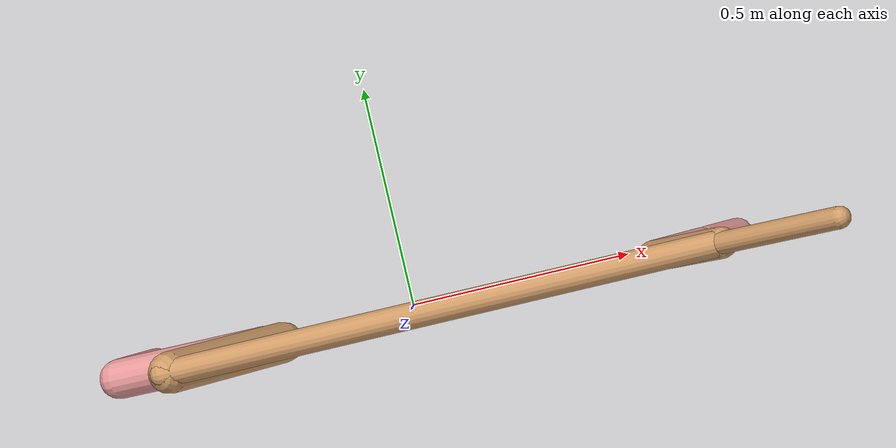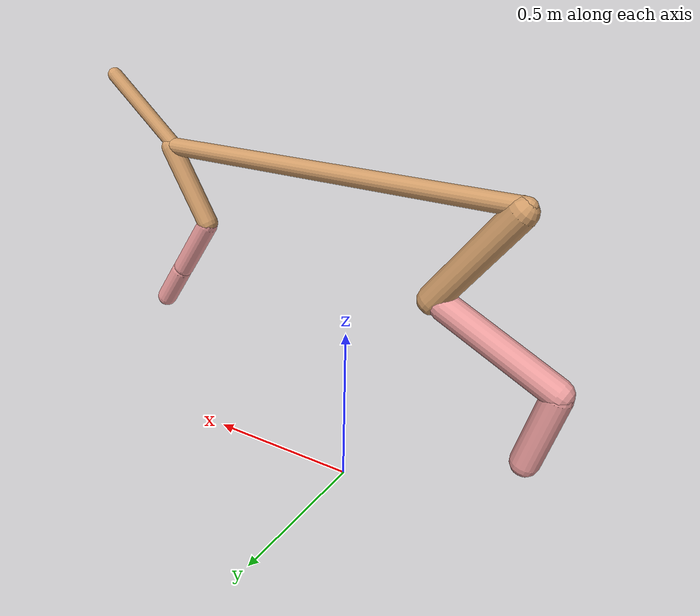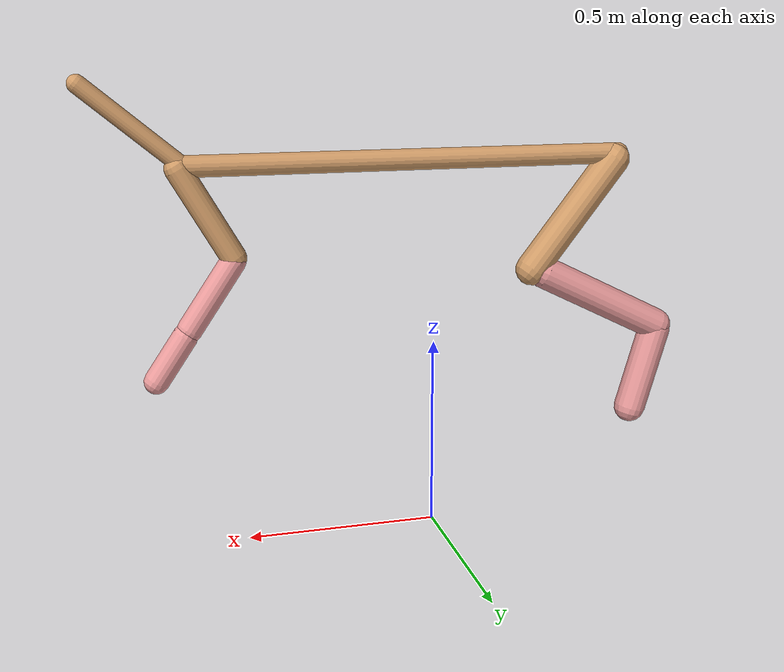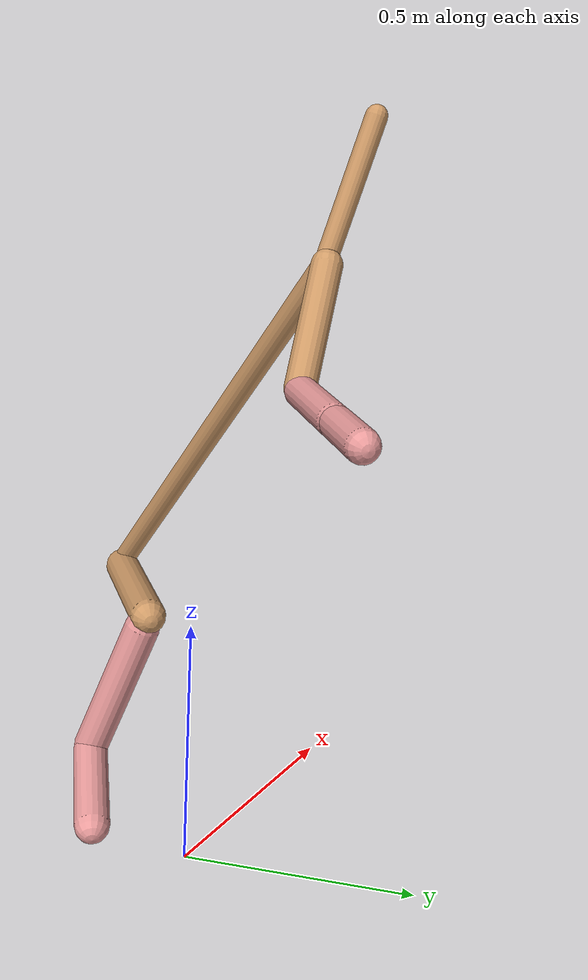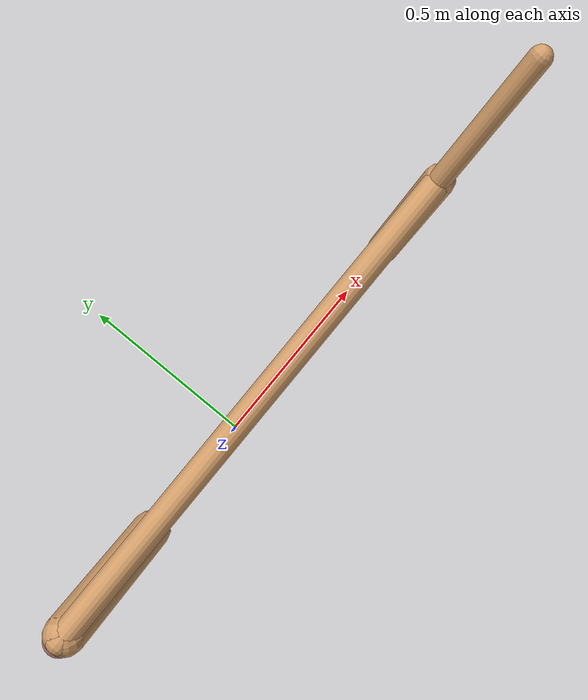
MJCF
<mujoco model="cheetah">
  <compiler angle="radian" coordinate="local" inertiafromgeom="true" settotalmass="14" />
  <default>
    <joint armature=".1" damping=".01" limited="true" solimplimit="0 .8 .03" solreflimit=".02 1" stiffness="8" />
    <geom conaffinity="0" condim="3" contype="1" friction="0.8 .1 .1" rgba="0.8 0.6 .4 1" solimp="0.0 0.8 0.01" solref="0.02 1" />
    <motor ctrllimited="true" ctrlrange="-1 1" />
  </default>
  <size nstack="300000" nuser_geom="1" />
  <option gravity="0 0 -9.81" timestep="0.01" />
  <worldbody>
    <body name="torso" pos="0.0 0.0 0.979822964102057">
      <joint armature="0" axis="1 0 0" damping="0" limited="false" name="ignorex" pos="0 0 0" stiffness="0" type="slide" />
      <joint armature="0" axis="0 0 1" damping="0" limited="false" name="ignorez" pos="0 0 0" stiffness="0" type="slide" />
      <joint armature="0" axis="0 1 0" damping="0" limited="false" name="ignorey" pos="0 0 0" stiffness="0" type="hinge" />
      <geom fromto="-0.5 0.0 0.0 0.6455126977436431 0.0 0.0" name="torso" size="0.026920720783779762" type="capsule" />
      <geom axisangle="0 1 0 .87" name="head" pos="0.7455126977436429 0.0 0.1" size="0.02250662344727533 0.15" type="capsule" />

      <body name="bthigh" pos="-.5 0 0">
        <joint axis="0 1 0" damping="6" name="bthigh" pos="0 0 0" range="-.52 1.05" stiffness="240" type="hinge" />
        <geom axisangle="0 1 0 -3.8" name="bthigh" pos="0.12096491990690916 0.0 -0.1572543958789819" size="0.042512482728305497 0.17938502524982905" type="capsule" />
        <body name="bshin" pos="0.20192983981381832 0.0 -0.3045087917579638">
          <joint axis="0 1 0" damping="4.5" name="bshin" pos="0 0 0" range="-.785 .785" stiffness="180" type="hinge" />
          <geom axisangle="0 1 0 -2.03" name="bshin" pos="-0.17181541539310255 0.0 -0.08590770769655127" rgba="0.9 0.6 0.6 1" size="0.042512482728305497 0.18557071577568524" type="capsule" />
          <body name="bfoot" pos="-0.3436308307862051 0.0 -0.17181541539310255">
            <joint axis="0 1 0" damping="3" name="bfoot" pos="0 0 0" range="-.4 .785" stiffness="120" type="hinge" />
            <geom axisangle="0 1 0 -.27" name="bfoot" pos="0.036586310241545635 0.0 -0.11829573644766422" rgba="0.9 0.6 0.6 1" size="0.042512482728305497 0.11629098188609609" type="capsule" />
            <inertial mass="10" />
          </body>
        </body>
      </body>
      <body name="fthigh" pos="0.645512697743643 0.0 0.0">
        <joint axis="0 1 0" damping="4.5" name="fthigh" pos="0 0 0" range="-1.5 0.8" stiffness="180" type="hinge" />
        <geom axisangle="0 1 0 .52" name="fthigh" pos="-0.06770918616084244 0.0 -0.11607289056144417" size="0.0322 0.12845357100703528" type="capsule" />
        <body name="fshin" pos="-0.13541837232168488 0.0 -0.23214578112288833">
          <joint axis="0 1 0" damping="3" name="fshin" pos="0 0 0" range="-1.2 1.1" stiffness="120" type="hinge" />
          <geom axisangle="0 1 0 -.6" name="fshin" pos="0.06287849270462312 0.0 -0.08706252836024739" rgba="0.9 0.6 0.6 1" size="0.0322 0.10237653027628375" type="capsule" />
          <body name="ffoot" pos="0.12575698540924624 0.0 -0.17412505672049478">
            <joint axis="0 1 0" damping="1.5" name="ffoot" pos="0 0 0" range="-3.1 -0.3" stiffness="60" type="hinge" />
            <geom axisangle="0 1 0 -.6" name="ffoot" pos="0.04370604421509818 0.0 -0.06798717989015274" rgba="0.9 0.6 0.6 1" size="0.0322 0.06760714263528174" type="capsule" />
            <inertial mass="10" />
          </body>
        </body>
      </body>
    </body>
  </worldbody>
  <actuator>
    <motor gear="120" joint="bthigh" name="bthigh" />
    <motor gear="90" joint="bshin" name="bshin" />
    <motor gear="60" joint="bfoot" name="bfoot" />
    <motor gear="120" joint="fthigh" name="fthigh" />
    <motor gear="60" joint="fshin" name="fshin" />
    <motor gear="30" joint="ffoot" name="ffoot" />
  </actuator>
</mujoco>
